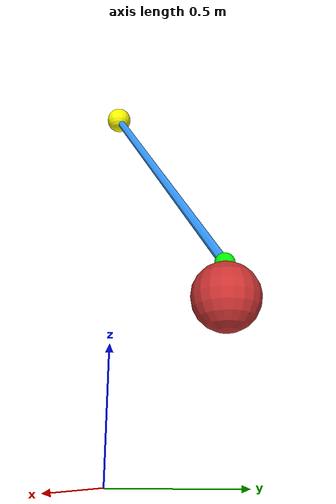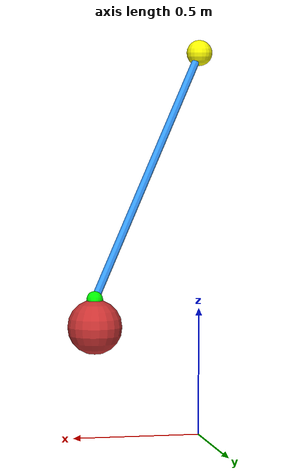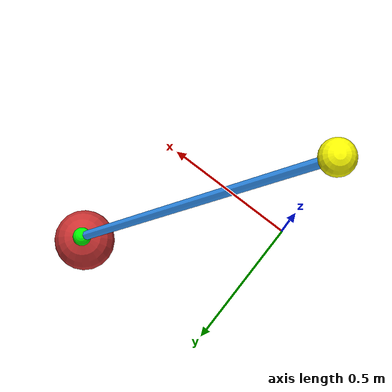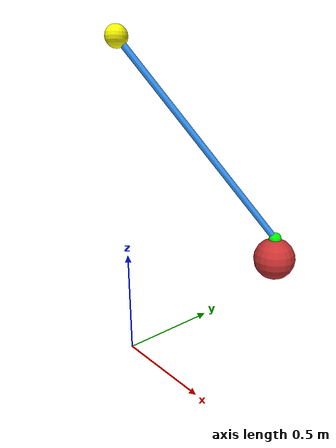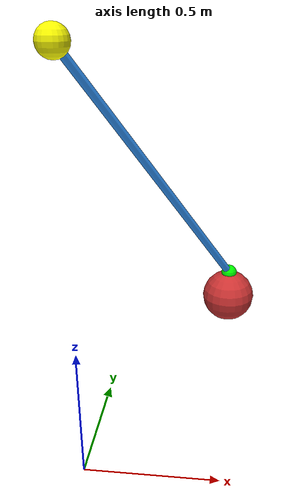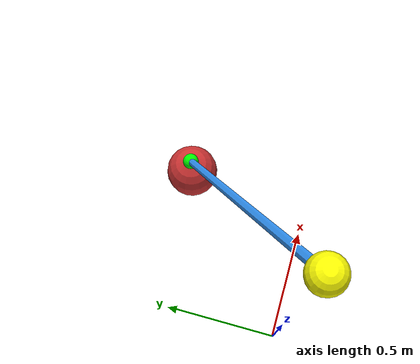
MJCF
<mujoco model="tendon_single_springlength">
  <compiler angle="radian" autolimits="true"/>

  <option gravity="0 0 -9.81"/>

  <worldbody>
    <!-- Fixed anchor point at top -->
    <site name="anchor" pos="0 0 1.5" size="0.05" rgba="1 1 0 1"/>

    <!-- Hanging weight with free joint so it can move in space -->
    <body name="weight" pos="0.5 0.5 0.5">
      <freejoint name="weight_free"/>
      <geom type="sphere" size="0.1" mass="1" rgba="0.8 0.2 0.2 1"/>
      <site name="weight_attach" pos="0 0 0.1" size="0.03" rgba="0 1 0 1"/>
    </body>
  </worldbody>

  <tendon>
    <spatial name="tether" width="0.015" rgba="0.2 0.6 1 1"
             springlength="0.3" stiffness="500" damping="10">
      <site site="anchor"/>
      <site site="weight_attach"/>
    </spatial>
  </tendon>
</mujoco>
